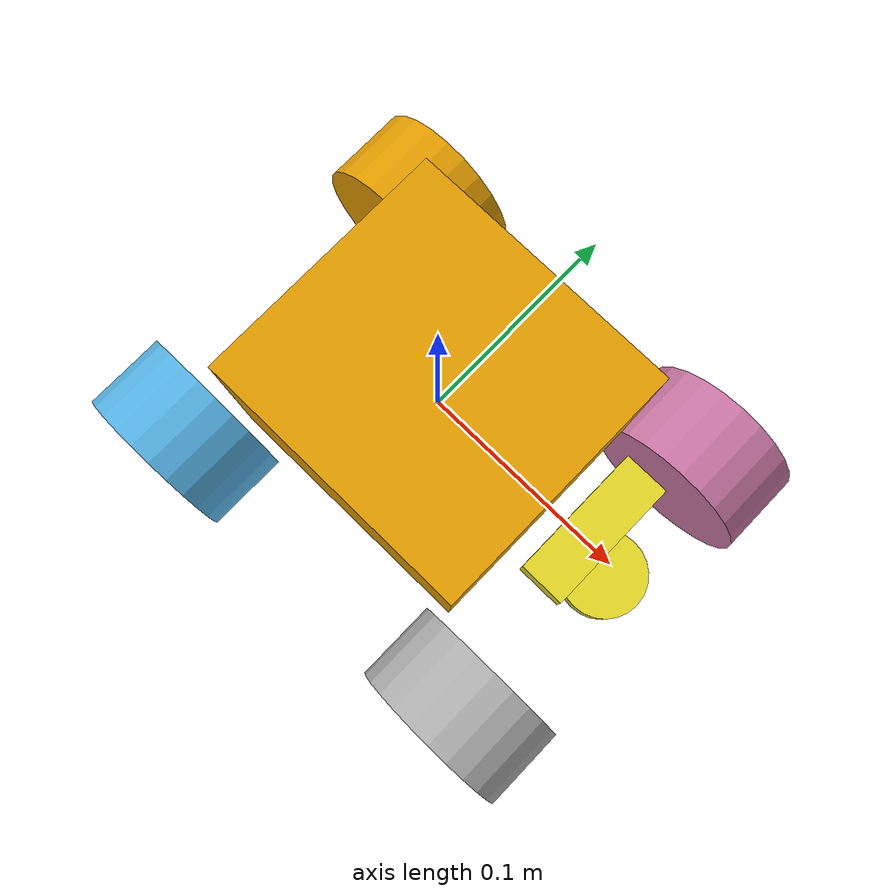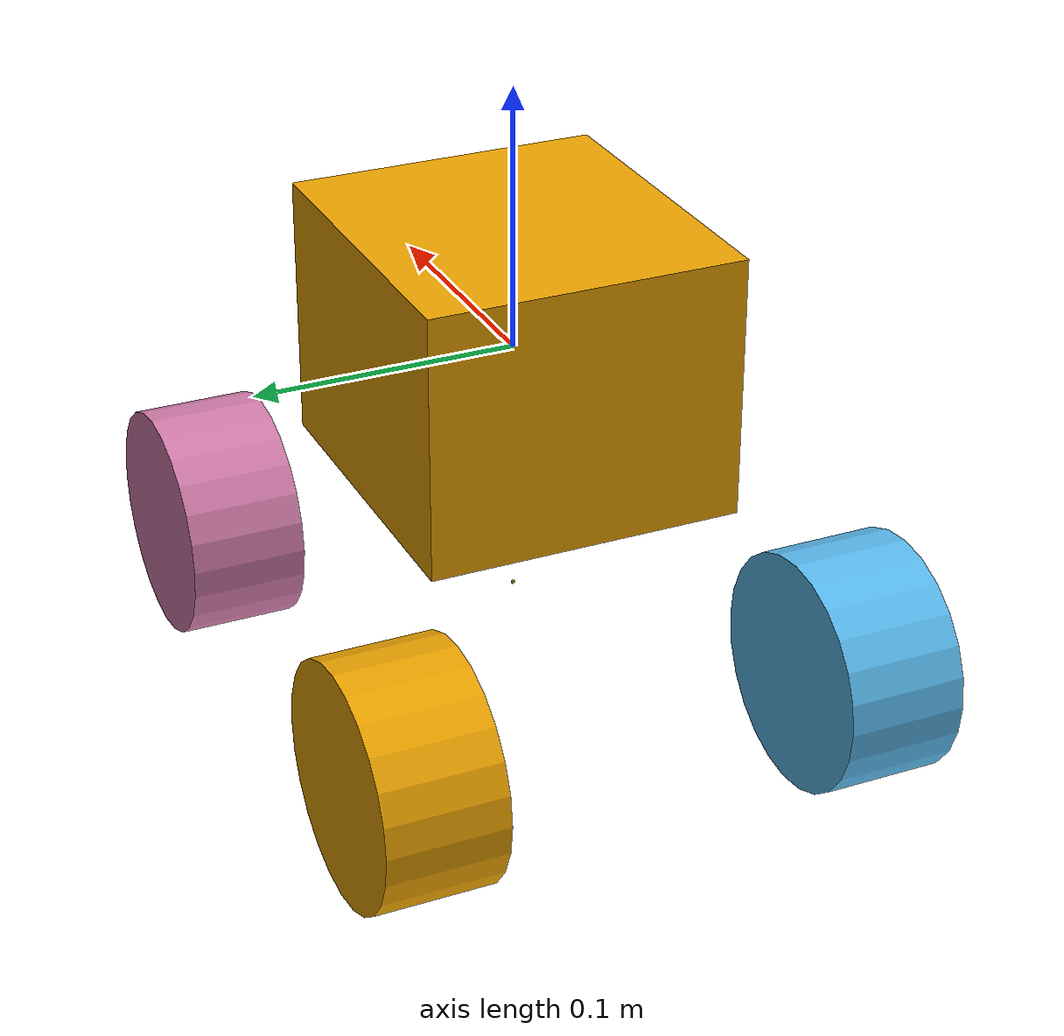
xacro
<?xml version="1.0"?>

<robot name="limo_four_diff" xmlns:xacro="http://ros.org/wiki/xacro">

    <xacro:include filename="$(find limo_description)/urdf/limo_xacro.xacro" />
    <xacro:include filename="$(find limo_description)/urdf/limo_four_diff.gazebo" />

    <!-- Variables -->
    <xacro:property name="M_PI" value="3.14159"/>

    <!-- Vehicle Geometries -->
    <xacro:property name="base_x_size" value="0.13" />
    <xacro:property name="base_y_size" value="0.12" />
    <xacro:property name="base_z_size" value="0.1" />

    <xacro:property name="wheelbase" value="0.2"/>
    <xacro:property name="track" value="0.13"/>
    <xacro:property name="wheel_vertical_offset" value="-0.10" />
    <xacro:property name="base_mass" value="2.1557"/>

    <xacro:property name="wheel_length" value="0.045" />
    <xacro:property name="wheel_radius" value="0.045" />
    <!-- Base link -->
    <link name="base_link">
        <visual>
            <origin xyz="0 0 0" rpy="0 0 0" />
            <geometry>
                <box size="${base_x_size} ${base_y_size} ${base_z_size}"/>
            </geometry>
        </visual>
        <collision>
            <!--origin xyz="0 0 -0.15" rpy="0 0 1.57" /-->
            <origin xyz="0 0 0" rpy="0 0 0" />
          <geometry>
              <box size="${base_x_size} ${base_y_size} ${base_z_size}"/>
          </geometry>
        </collision>
    </link>

    <link name="inertial_link">
        <inertial>
            <origin xyz="0.0 0.0 0.0" />
            <mass value="${base_mass}" />
            <inertia ixx="0.24" ixy="0" ixz="0"
                     iyy="0.96" iyz="0"
                     izz="0.96" />
        </inertial>
    </link>

    <joint name="inertial_joint" type="fixed">
        <origin xyz="0 0 0" rpy="0 0 0" />
        <parent link="base_link" />
        <child link="inertial_link" />
    </joint>

    <xacro:limo_laser parent_prefix="base_link" frame_prefix="laser">
        <origin xyz="0.103 0 -0.034" rpy="0 0 0"/>
    </xacro:limo_laser>

    <xacro:limo_depth_camera parent_prefix="base_link" frame_prefix="depth_camera">
        <origin xyz="0.084 0 0.03" rpy="0 0 0"/>
    </xacro:limo_depth_camera>

    <xacro:limo_imu parent_prefix="base_link" frame_prefix="imu">
        <origin xyz="0.0 0 -0.1" rpy="0 0 0"/>
    </xacro:limo_imu>

    <xacro:limo_wheel1 parent_prefix="base_link" wheel_prefix="front_left" reflect="-1">
        <origin xyz="${wheelbase/2} ${track/2} ${wheel_vertical_offset}" rpy="0 0  0" />
    </xacro:limo_wheel1>

    <xacro:limo_wheel2 parent_prefix="base_link" wheel_prefix="front_right" reflect="-1">
        <origin xyz="${wheelbase/2} ${-track/2} ${wheel_vertical_offset}" rpy="${M_PI} 0 0" />
    </xacro:limo_wheel2>

    <xacro:limo_wheel3 parent_prefix="base_link" wheel_prefix="rear_left" reflect="-1">
        <origin xyz="${-wheelbase/2} ${track/2} ${wheel_vertical_offset}" rpy="0 0 0" />
    </xacro:limo_wheel3>

    <xacro:limo_wheel4 parent_prefix="base_link" wheel_prefix="rear_right" reflect="-1">
        <origin xyz="${-wheelbase/2} ${-track/2} ${wheel_vertical_offset}" rpy="${M_PI} 0 0" />
    </xacro:limo_wheel4>
</robot>

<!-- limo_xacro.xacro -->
<robot name="limo_xacro" xmlns:xacro="http://ros.org/wiki/xacro">
    <xacro:macro name="limo_wheel1" params="parent_prefix wheel_prefix reflect *joint_pose">
        <link name="${wheel_prefix}_wheel_link">
            <inertial>
                <origin xyz="0 0 0" />
                <mass value="0.5" />
                <inertia ixx="0.01055" ixy="0" ixz="0" iyy="0.00075" iyz="0" izz="0.01055" />
            </inertial>
            <visual>
                <origin xyz="0 ${wheel_length/2} 0" rpy="1.57 0 0" />
                <geometry>
                    <cylinder length="${wheel_length}" radius="${wheel_radius}" />
                </geometry>
            </visual>
            <collision>
              <origin xyz="0 ${wheel_length/2} 0" rpy="1.57 0 0" />
              <geometry>
                  <cylinder length="${wheel_length}" radius="${wheel_radius}" />
              </geometry>
            </collision>
        </link>

        <joint name="${wheel_prefix}_wheel" type="continuous">
            <parent link="${parent_prefix}"/>
            <child link="${wheel_prefix}_wheel_link"/>
            <xacro:insert_block name="joint_pose"/>
            <axis xyz="0 ${reflect*1} 0"/>
        </joint>
    </xacro:macro>

    <xacro:macro name="limo_wheel2" params="parent_prefix wheel_prefix reflect *joint_pose">
        <link name="${wheel_prefix}_wheel_link">
            <inertial>
                <origin xyz="0 0 0" />
                <mass value="0.5" />
                <inertia ixx="0.01055" ixy="0" ixz="0" iyy="0.00075" iyz="0" izz="0.01055" />
            </inertial>
            <visual>
                <origin xyz="0 ${wheel_length/2} 0" rpy="1.57 0 0" />
                <geometry>
                    <cylinder length="${wheel_length}" radius="${wheel_radius}" />
                </geometry>
            </visual>
            <collision>
              <origin xyz="0 ${wheel_length/2} 0" rpy="1.57 0 0" />
              <geometry>
                  <cylinder length="${wheel_length}" radius="${wheel_radius}" />
              </geometry>
            </collision>
        </link>

        <joint name="${wheel_prefix}_wheel" type="continuous">
            <parent link="${parent_prefix}"/>
            <child link="${wheel_prefix}_wheel_link"/>
            <xacro:insert_block name="joint_pose"/>
            <axis xyz="0 ${reflect*1} 0"/>
        </joint>
    </xacro:macro>

    <xacro:macro name="limo_wheel3" params="parent_prefix wheel_prefix reflect *joint_pose">
        <link name="${wheel_prefix}_wheel_link">
            <inertial>
                <origin xyz="0 0 0" />
                <mass value="0.5" />
                <inertia ixx="0.01055" ixy="0" ixz="0" iyy="0.00075" iyz="0" izz="0.01055" />
            </inertial>
            <visual>
                <origin xyz="0 ${wheel_length/2} 0" rpy="1.57 0 0" />
                <geometry>
                    <cylinder length="${wheel_length}" radius="${wheel_radius}" />
                </geometry>
            </visual>
            <collision>
              <origin xyz="0 ${wheel_length/2} 0" rpy="1.57 0 0" />
              <geometry>
                  <cylinder length="${wheel_length}" radius="${wheel_radius}" />
              </geometry>
            </collision>
        </link>

        <joint name="${wheel_prefix}_wheel" type="continuous">
            <parent link="${parent_prefix}"/>
            <child link="${wheel_prefix}_wheel_link"/>
            <xacro:insert_block name="joint_pose"/>
            <axis xyz="0 ${reflect*1} 0"/>
        </joint>
    </xacro:macro>

    <xacro:macro name="limo_wheel4" params="parent_prefix wheel_prefix reflect *joint_pose">
        <link name="${wheel_prefix}_wheel_link">
            <inertial>
                <origin xyz="0 0 0" />
                <mass value="0.5" />
                <inertia ixx="0.01055" ixy="0" ixz="0" iyy="0.00075" iyz="0" izz="0.01055" />
            </inertial>
            <visual>
                <origin xyz="0 ${wheel_length/2} 0" rpy="1.57 0 0" />
                <geometry>
                    <cylinder length="${wheel_length}" radius="${wheel_radius}" />
                </geometry>
            </visual>
            <collision>
              <origin xyz="0 ${wheel_length/2} 0" rpy="1.57 0 0" />
              <geometry>
                  <cylinder length="${wheel_length}" radius="${wheel_radius}" />
              </geometry>
            </collision>
        </link>

        <joint name="${wheel_prefix}_wheel" type="continuous">
            <parent link="${parent_prefix}"/>
            <child link="${wheel_prefix}_wheel_link"/>
            <xacro:insert_block name="joint_pose"/>
            <axis xyz="0 ${reflect*1} 0"/>
        </joint>
    </xacro:macro>

    <xacro:macro name="limo_laser" params="parent_prefix frame_prefix *joint_pose">
        <link name='${frame_prefix}_link'>
            <pose>0 0 0 0 0 0</pose>
            <inertial>
                <mass value="0.1"/>
                <origin xyz="0.0 0 0" rpy="0 0 0"/>
                <inertia
                    ixx="1e-6" ixy="0" ixz="0"
                    iyy="1e-6" iyz="0"
                    izz="1e-6"
                />
            </inertial>
            <visual name='laser_visual'>
                <origin xyz="0 0 0" rpy="0 0 0"/>
                <geometry>
                    <cylinder radius="0.02" length="0.01"/>
                </geometry>
                <material name='laser_material'>
                    <ambient>0.1 0.1 0.1 1</ambient>
                    <diffuse>0.1 0.1 0.2 1</diffuse>
                    <specular>0 0 0 0</specular>
                    <emissive>0 0 0 1</emissive>
                </material>
            </visual>
            <collision name='laser_collision'>
                <origin xyz="0 0 0" rpy="0 0 0"/>
                <geometry>
                    <cylinder radius="0.032" length="0.016"/>
                </geometry>
            </collision>
        </link>
        <joint type="fixed" name="laser_joint">
            <xacro:insert_block name="joint_pose"/>
            <child link="${frame_prefix}_link"/>
            <parent link="${parent_prefix}"/>
        </joint>
        <gazebo reference="${frame_prefix}_link">
            <material>Gazebo/Yellow</material>
        </gazebo>
    </xacro:macro>

    <xacro:macro name="limo_depth_camera" params="parent_prefix frame_prefix *joint_pose">
        <link name='${frame_prefix}_link'>
            <pose>0 0 0 0 0 0</pose>
            <inertial>
                <mass value="0.1"/>
                <origin xyz="0.0 0 0" rpy="0 0 0"/>
                <inertia
                    ixx="1e-6" ixy="0" ixz="0"
                    iyy="1e-6" iyz="0"
                    izz="1e-6"
                />
            </inertial>
            <visual name='depth_camera_visual'>
                <origin xyz="0 0 0" rpy="0 0 0"/>
                <geometry>
                    <box size="0.02 0.06 0.015"/>
                </geometry>
                <material name='depth_camera_material'>
                    <ambient>0.1 0.1 0.1 1</ambient>
                    <diffuse>0.1 0.1 0.2 1</diffuse>
                    <specular>0 0 0 0</specular>
                    <emissive>0 0 0 1</emissive>
                </material>
            </visual>
            <collision name='depth_camera_collision'>
                <origin xyz="0 0 0" rpy="0 0 0"/>
                <geometry>
                    <box size="0.02 0.06 0.015"/>
                </geometry>
            </collision>
        </link>

        <joint type="fixed" name="depth_camera_joint">
            <xacro:insert_block name="joint_pose"/>
            <child link="${frame_prefix}_link"/>
            <parent link="${parent_prefix}"/>
        </joint>
        <link name="depth_link"></link>

        <joint name="${frame_prefix}_to_camera_joint" type="fixed">
            <origin xyz="0 0 0" rpy="${-M_PI/2} 0 ${-M_PI/2} "/>
            <parent link="${frame_prefix}_link"/>
            <child link="depth_link"/>
          </joint>

        <gazebo reference="${frame_prefix}_link">
            <material>Gazebo/Yellow</material>
        </gazebo>
    </xacro:macro>

    <xacro:macro name="limo_imu" params="parent_prefix frame_prefix  *joint_pose">
        <link name='${frame_prefix}_link'>
            <pose>0 0 0 0 0 0</pose>
            <inertial>
                <mass value="0.01"/>
                <origin xyz="0.0 0 0" rpy="0 0 0"/>
                <inertia
                    ixx="1e-7" ixy="0" ixz="0"
                    iyy="1e-7" iyz="0"
                    izz="1e-7"
                />
            </inertial>
            <visual name='imu_visual'>
                <origin xyz="0 0 0" rpy="0 0 0"/>
                <geometry>
                    <box size="0.001 0.001 0.001"/>
                </geometry>
                <material name='imu_material'>
                    <ambient>0.1 0.1 0.1 1</ambient>
                    <diffuse>0.1 0.1 0.2 1</diffuse>
                    <specular>0 0 0 0</specular>
                    <emissive>0 0 0 1</emissive>
                </material>
            </visual>
            <collision name='imu_collision'>
                <origin xyz="0 0 0" rpy="0 0 0"/>
                <geometry>
                    <box size="0.001 0.001 0.001"/>
                </geometry>
            </collision>
        </link>
        <joint type="fixed" name="imu_joint">
            <xacro:insert_block name="joint_pose"/>
            <child link="${frame_prefix}_link"/>
            <parent link="${parent_prefix}"/>
        </joint>
        <gazebo reference="${frame_prefix}_link">
            <material>Gazebo/Yellow</material>
        </gazebo>
    </xacro:macro>
</robot>
